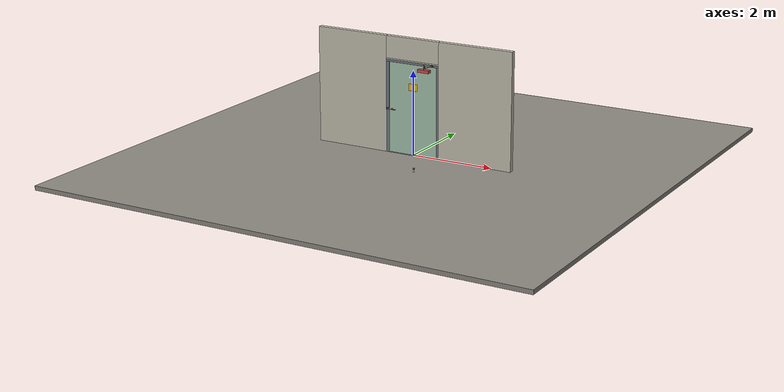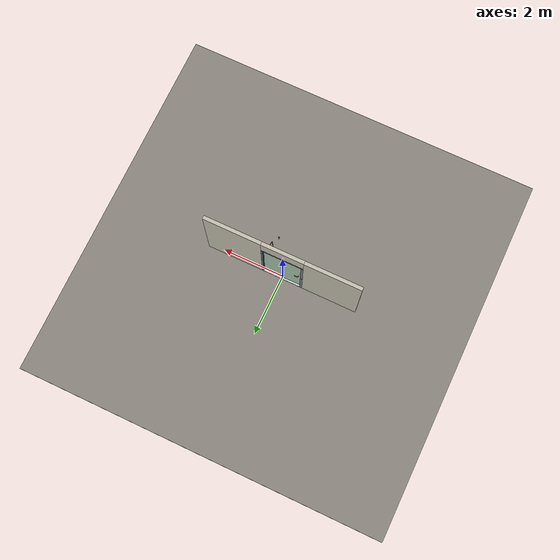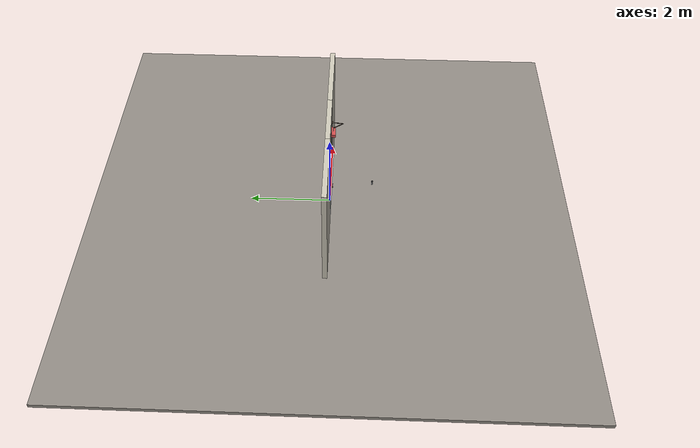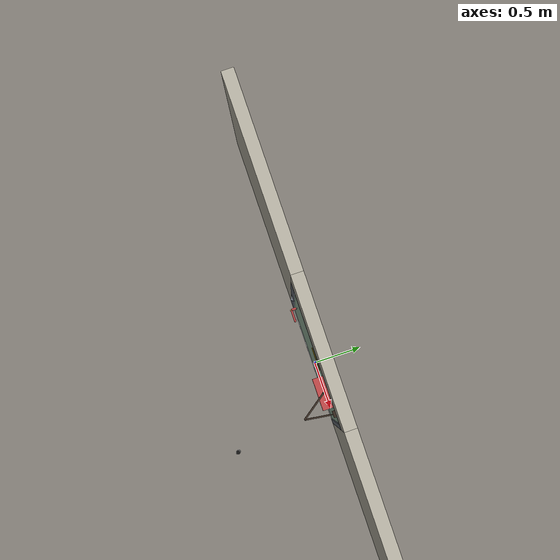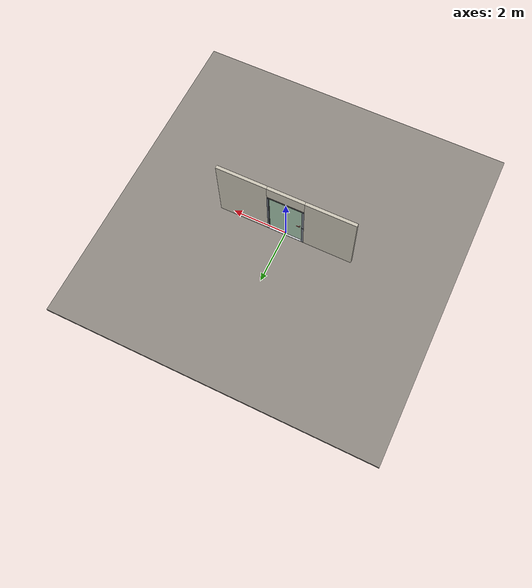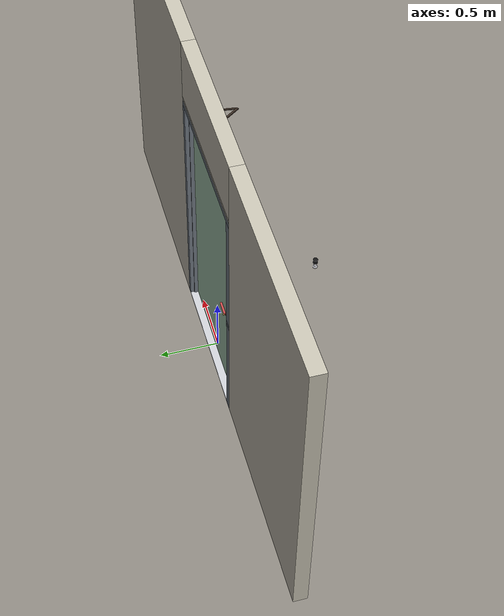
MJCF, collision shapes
<?xml version="1.0" ?>
<mujoco model="db0206_swing_single_full">
  <compiler angle="radian" meshdir="../../hardware" texturedir="../../textures" autolimits="true" inertiafromgeom="false"/>
  <option timestep="0.002" integrator="implicitfast" cone="elliptic" impratio="10" noslip_iterations="3">
    <flag multiccd="enable"/>
  </option>
  <size memory="16M"/>
  <default>
    <geom condim="4" solref="0.005 1" solimp="0.95 0.99 0.001"/>
    <joint solreflimit="0.005 1" solimplimit="0.95 0.99 0.001"/>
    <tendon solreflimit="0.005 1"/>
    <equality solref="0.002 1"/>
  </default>
  <visual>
    <headlight ambient="0.4 0.4 0.4" diffuse="0.7 0.7 0.7" specular="0.2 0.2 0.2"/>
    <quality shadowsize="4096"/>
    <map znear="0.01" zfar="60"/>
  </visual>
  <asset>
    <mesh name="closer_body_fdc4667657" file="closer_body_fdc4667657.obj"/>
    <mesh name="hinge_ed08f20e7f" file="hinge_ed08f20e7f.obj"/>
    <mesh name="hinge_jamb_1278ce3e25" file="hinge_jamb_1278ce3e25.obj"/>
    <mesh name="lever_9f02b544cf" file="lever_9f02b544cf.obj"/>
    <material name="mat_floor" rgba="0.55 0.53 0.5 1" specular="0.2" shininess="0.15" reflectance="0"/>
    <material name="mat_wall" rgba="0.78 0.76 0.7 1" specular="0.2" shininess="0.1" reflectance="0"/>
    <material name="mat_leaf" rgba="0.65 0.78 0.68 1" specular="0.2" shininess="0.52" reflectance="0"/>
    <material name="mat_hinge" rgba="0.65 0.66 0.68 1" specular="0.74" shininess="0.5" reflectance="0.36"/>
    <material name="mat_op_nickel_satin" rgba="0.72 0.7 0.66 1" specular="0.8" shininess="0.65" reflectance="0.4"/>
    <material name="mat_trim" rgba="0.85 0.66 0.3 1" specular="0.8" shininess="0.75" reflectance="0.4"/>
    <material name="mat_keyway" rgba="0.05 0.05 0.05 1" specular="0.2" shininess="0.5" reflectance="0"/>
    <material name="mat_bolt" rgba="0.85 0.66 0.3 1" specular="0.8" shininess="0.75" reflectance="0.4"/>
    <material name="mat_frame" rgba="0.45 0.48 0.52 1" specular="0.32" shininess="0.6" reflectance="0.08"/>
    <material name="mat_threshold" rgba="0.8 0.81 0.83 1" specular="0.8" shininess="0.6" reflectance="0.4"/>
    <material name="mat_closer" rgba="0.22 0.17 0.13 1" specular="0.8" shininess="0.6" reflectance="0.4"/>
    <material name="mat_placard" rgba="0.95 0.75 0.05 1" specular="0.2" shininess="0.5" reflectance="0"/>
    <material name="mat_bumper_stop" rgba="0.08 0.08 0.08 1" specular="0.2" shininess="0.1" reflectance="0"/>
    <material name="mat_stop_base" rgba="0.9 0.9 0.92 1" specular="0.8" shininess="0.9" reflectance="0.4"/>
    <texture name="skybox" type="skybox" builtin="gradient" rgb1="0.6 0.7 0.85" rgb2="0.9 0.92 0.95" width="256" height="256"/>
  </asset>
  <worldbody>
    <light name="sun" pos="1.5 -2.5 4" dir="-0.3 0.5 -0.8" directional="true" diffuse="0.8 0.8 0.8" specular="0.3 0.3 0.3" castshadow="true"/>
    <light name="fill" pos="-1.5 2.5 3" dir="0.3 -0.5 -0.7" directional="true" diffuse="0.35 0.35 0.4" castshadow="false"/>
    <camera name="robot_view" pos="0 -2.609312 1.812087" xyaxes="1 0 0 0 0.26963 0.962964" fovy="52"/>
    <camera name="far_view" pos="0 2.666313 1.812087" xyaxes="-1 0 0 0 -0.26963 0.962964" fovy="52"/>
    <camera name="iso" pos="-2.004737 -2.187262 2.234138" xyaxes="0.741536 -0.670913 0 0.242917 0.268487 0.932151" fovy="46"/>
    <camera name="detail_handle" pos="-0.259 -0.877 1.32" xyaxes="0.97561 0.219512 0 -0.070934 0.315262 0.94635" fovy="38"/>
    <geom name="floor" type="box" size="6 6 0.05" pos="0 0 -0.05" material="mat_floor" group="0" contype="1" conaffinity="1" friction="0.8 0.005 0.0001" density="2400"/>
    <geom name="wall_left" type="box" size="0.9035 0.0575 1.3735" pos="-1.5965 0.0285 1.3735" material="mat_wall" group="0" contype="1" conaffinity="1" friction="0.6 0.005 0.0001" density="800"/>
    <geom name="wall_right" type="box" size="0.9185 0.0575 1.3735" pos="1.5815 0.0285 1.3735" material="mat_wall" group="0" contype="1" conaffinity="1" friction="0.6 0.005 0.0001" density="800"/>
    <geom name="wall_header" type="box" size="0.678 0.0575 0.26" pos="-0.015 0.0285 2.487" material="mat_wall" group="0" contype="1" conaffinity="1" friction="0.6 0.005 0.0001" density="800"/>
    <geom name="hinge_0_jamb" type="mesh" mesh="hinge_jamb_1278ce3e25" pos="0.61 -0.029 0.267" quat="0 0 1 0" material="mat_hinge" group="1" contype="0" conaffinity="0" density="7850"/>
    <geom name="hinge_1_jamb" type="mesh" mesh="hinge_jamb_1278ce3e25" pos="0.61 -0.029 0.832333" quat="0 0 1 0" material="mat_hinge" group="1" contype="0" conaffinity="0" density="7850"/>
    <geom name="hinge_2_jamb" type="mesh" mesh="hinge_jamb_1278ce3e25" pos="0.61 -0.029 1.397667" quat="0 0 1 0" material="mat_hinge" group="1" contype="0" conaffinity="0" density="7850"/>
    <geom name="hinge_3_jamb" type="mesh" mesh="hinge_jamb_1278ce3e25" pos="0.61 -0.029 1.963" quat="0 0 1 0" material="mat_hinge" group="1" contype="0" conaffinity="0" density="7850"/>
    <geom name="jamb_hinge" type="box" size="0.025 0.0575 1.0735" pos="0.638 0.0285 1.0735" material="mat_frame" group="0" contype="1" conaffinity="1" friction="0.6 0.005 0.0001" density="300"/>
    <geom name="strike_1040_wall_n" type="box" size="0.04 0.03825 0.0183" pos="-0.653 0.04775 1.04" material="mat_frame" group="0" contype="1" conaffinity="1" friction="0.6 0.005 0.0001" density="300"/>
    <geom name="strike_1040_wall_p" type="box" size="0.04 0.008 0.0183" pos="-0.653 -0.0175 1.04" material="mat_frame" group="0" contype="1" conaffinity="1" friction="0.6 0.005 0.0001" density="300"/>
    <geom name="strike_1040_ramp" type="box" size="0.04 0.018028 0.0183" pos="-0.656282 -0.018312 1.04" quat="0.957092 0 0 -0.289784" material="mat_frame" group="0" contype="1" conaffinity="1" friction="0.12 0.005 0.0001" density="300"/>
    <geom name="strike_1040_back" type="box" size="0.0285 0.0095 0.0183" pos="-0.6645 0 1.04" material="mat_frame" group="0" contype="1" conaffinity="1" friction="0.6 0.005 0.0001" density="300"/>
    <geom name="jamb_strike_0" type="box" size="0.04 0.0575 0.51085" pos="-0.653 0.0285 0.51085" material="mat_frame" group="0" contype="1" conaffinity="1" friction="0.6 0.005 0.0001" density="300"/>
    <geom name="jamb_strike_1" type="box" size="0.04 0.0575 0.54435" pos="-0.653 0.0285 1.60265" material="mat_frame" group="0" contype="1" conaffinity="1" friction="0.6 0.005 0.0001" density="300"/>
    <geom name="jamb_head" type="box" size="0.678 0.0575 0.025" pos="-0.015 0.0285 2.172" material="mat_frame" group="0" contype="1" conaffinity="1" friction="0.6 0.005 0.0001" density="300"/>
    <geom name="head_stud" type="box" size="0.678 0.0575 0.015" pos="-0.015 0.0285 2.212" material="mat_wall" group="0" contype="1" conaffinity="1" friction="0.6 0.005 0.0001" density="500"/>
    <geom name="stop_hinge" type="box" size="0.0055 0.016 1.0735" pos="0.6075 0.0385 1.0735" material="mat_frame" group="0" contype="1" conaffinity="1" friction="0.6 0.005 0.0001" density="300"/>
    <geom name="stop_strike" type="box" size="0.0055 0.016 1.0735" pos="-0.6075 0.0385 1.0735" material="mat_frame" group="0" contype="1" conaffinity="1" friction="0.6 0.005 0.0001" density="300"/>
    <geom name="stop_head" type="box" size="0.613 0.016 0.0055" pos="0 0.0385 2.1415" material="mat_frame" group="0" contype="1" conaffinity="1" friction="0.6 0.005 0.0001" density="300"/>
    <geom name="threshold" type="box" size="0.663 0.0575 0.0065" pos="0 0.0285 0.0065" material="mat_threshold" group="0" contype="1" conaffinity="1" friction="0.5 0.005 0.0001" density="2700"/>
    <geom name="closer_bracket" type="box" size="0.03 0.012 0.014" pos="0.513 -0.041 2.177" material="mat_closer" group="1" contype="0" conaffinity="0" density="2700"/>
    <geom name="door_stop_base" type="cylinder" size="0.022 0.003" pos="0.626 -1.06515 0.003" material="mat_stop_base" group="0" contype="1" conaffinity="1" friction="0.6 0.005 0.0001" density="7850"/>
    <geom name="door_stop_post" type="cylinder" size="0.012 0.0255" pos="0.626 -1.06515 0.0315" material="mat_stop_base" group="0" contype="1" conaffinity="1" friction="0.6 0.005 0.0001" density="7850"/>
    <geom name="door_stop_bumper" type="cylinder" size="0.022 0.02" pos="0.626 -1.06515 0.077" material="mat_bumper_stop" group="0" contype="1" conaffinity="1" friction="0.6 0.005 0.0001" density="1100"/>
    <site name="approach_point" pos="0 -1.5 0" quat="1 0 0 0" size="0.05" rgba="0.2 0.9 0.2 0.5" group="4"/>
    <site name="goal_point" pos="0 1.5 0" quat="1 0 0 0" size="0.05" rgba="0.2 0.9 0.2 0.5" group="4"/>
    <site name="door_plane_center" pos="0 0 1.0735" quat="1 0 0 0" size="0.02" rgba="0.2 0.9 0.2 0.5" group="4"/>
    <body name="leaf" pos="0.613 0 0">
      <inertial pos="-0.573399 -0.007918 1.184265" mass="126.666749" quat="0.468809 0.483492 0.523031 -0.52239" diaginertia="15.259449637 54.354596862 69.461880445"/>
      <joint name="leaf_hinge" type="hinge" axis="0 0 1" pos="-0.003 -0.029 0" limited="true" range="0 1.570796" damping="12.850995" frictionloss="0.846963" stiffness="54.310033" springref="-1.794144" armature="0.02"/>
      <geom name="leaf_slab" type="box" size="0.6095 0.022 1.063" pos="-0.6125 0 1.08" material="mat_leaf" group="0" contype="1" conaffinity="1" friction="0.4 0.005 0.0001" density="1"/>
      <geom name="hinge_0" type="mesh" mesh="hinge_ed08f20e7f" pos="-0.003 -0.029 0.267" quat="0 0 1 0" material="mat_hinge" group="1" contype="0" conaffinity="0" density="7850"/>
      <geom name="hinge_1" type="mesh" mesh="hinge_ed08f20e7f" pos="-0.003 -0.029 0.832333" quat="0 0 1 0" material="mat_hinge" group="1" contype="0" conaffinity="0" density="7850"/>
      <geom name="hinge_2" type="mesh" mesh="hinge_ed08f20e7f" pos="-0.003 -0.029 1.397667" quat="0 0 1 0" material="mat_hinge" group="1" contype="0" conaffinity="0" density="7850"/>
      <geom name="hinge_3" type="mesh" mesh="hinge_ed08f20e7f" pos="-0.003 -0.029 1.963" quat="0 0 1 0" material="mat_hinge" group="1" contype="0" conaffinity="0" density="7850"/>
      <geom name="leaf_latch_bolt_faceplate" type="box" size="0.0006 0.014 0.0283" pos="-1.2214 0 1.04" material="mat_bolt" group="1" contype="0" conaffinity="0" density="8500"/>
      <geom name="closer_body" type="mesh" mesh="closer_body_fdc4667657" pos="-0.3 -0.022 2.046" quat="0 0 -0.707107 0.707107" material="mat_closer" group="1" contype="0" conaffinity="0" density="2000"/>
      <geom name="closer_body_col" type="box" size="0.145 0.05 0.035" pos="-0.3 -0.072 2.046" material="mat_closer" group="3" contype="1" conaffinity="1" rgba="0.8 0.3 0.3 0.25" friction="0.6 0.005 0.0001" density="2000"/>
      <geom name="closer_pinion_shaft" type="cylinder" size="0.008 0.0655" pos="-0.3 -0.072 2.1115" material="mat_closer" group="1" contype="0" conaffinity="0" density="2700"/>
      <geom name="warning_placard" type="box" size="0.11 0.001 0.08" pos="-0.6125 -0.023 1.6115" material="mat_placard" group="2" contype="0" conaffinity="0" density="1000"/>
      <site name="leaf_edge_mid" pos="-1.222 0 1.063" quat="1 0 0 0" size="0.02" rgba="0.2 0.9 0.2 0.5" group="4"/>
      <body name="leaf_handle" pos="-1.152 0 1.04">
        <inertial pos="0.027758 -0.000956 0" mass="1.005882" quat="0.702403 0 0 -0.71178" diaginertia="0.001794484 0.003806886 0.005422316"/>
        <joint name="leaf_handle_hinge" type="hinge" axis="0 1 0" limited="true" range="0 0.96" damping="0.245633" frictionloss="0.048" stiffness="1.2" springref="-0.458333" armature="0.01"/>
        <geom name="leaf_handle_spindle" type="cylinder" size="0.006 0.03" pos="0 0 0" quat="0.707107 -0.707107 0 0" material="mat_op_nickel_satin" group="1" contype="0" conaffinity="0" density="7850"/>
        <geom name="leaf_handle_lever_n" type="mesh" mesh="lever_9f02b544cf" pos="0 -0.022 0" quat="0 0 -0.707107 0.707107" material="mat_op_nickel_satin" group="1" contype="0" conaffinity="0" density="3000"/>
        <geom name="leaf_handle_lever_col_n" type="capsule" size="0.0095 0.053" pos="0.0625 -0.077 0" quat="0.707107 0 0.707107 0" material="mat_op_nickel_satin" group="3" contype="1" conaffinity="1" rgba="0.8 0.3 0.3 0.25" friction="0.7 0.01 0.0001" density="3000"/>
        <geom name="leaf_handle_hub_col_n" type="cylinder" size="0.012 0.022" pos="0 -0.052 0" quat="0.707107 -0.707107 0 0" material="mat_op_nickel_satin" group="3" contype="1" conaffinity="1" rgba="0.8 0.3 0.3 0.25" friction="0.6 0.005 0.0001" density="3000"/>
        <geom name="leaf_handle_cylinder_n" type="cylinder" size="0.0085 0.006" pos="0 -0.0845 0" quat="0.707107 -0.707107 0 0" material="mat_trim" group="1" contype="0" conaffinity="0" density="7100"/>
        <geom name="leaf_handle_keyway_n" type="box" size="0.0012 0.0008 0.006" pos="0 -0.091 0" material="mat_keyway" group="1" contype="0" conaffinity="0" density="7100"/>
        <geom name="leaf_handle_lever_p" type="mesh" mesh="lever_9f02b544cf" pos="0 0.022 0" quat="0 0 0.707107 0.707107" material="mat_op_nickel_satin" group="1" contype="0" conaffinity="0" density="3000"/>
        <geom name="leaf_handle_lever_col_p" type="capsule" size="0.0095 0.053" pos="0.0625 0.077 0" quat="0.707107 0 0.707107 0" material="mat_op_nickel_satin" group="3" contype="1" conaffinity="1" rgba="0.8 0.3 0.3 0.25" friction="0.7 0.01 0.0001" density="3000"/>
        <geom name="leaf_handle_hub_col_p" type="cylinder" size="0.012 0.022" pos="0 0.052 0" quat="0.707107 -0.707107 0 0" material="mat_op_nickel_satin" group="3" contype="1" conaffinity="1" rgba="0.8 0.3 0.3 0.25" friction="0.6 0.005 0.0001" density="3000"/>
        <geom name="leaf_handle_turn_button_p" type="cylinder" size="0.006 0.005" pos="0 0.0875 0" quat="0.707107 -0.707107 0 0" material="mat_trim" group="1" contype="0" conaffinity="0" density="7100"/>
        <site name="leaf_handle_grip_n" pos="0.1 -0.077 0" quat="1 0 0 0" size="0.012" rgba="0.2 0.9 0.2 0.5" group="4"/>
        <site name="leaf_handle_grip_p" pos="0.1 0.077 0" quat="1 0 0 0" size="0.012" rgba="0.2 0.9 0.2 0.5" group="4"/>
      </body>
      <body name="leaf_latch_bolt" pos="-1.222 0 1.04">
        <inertial pos="0.0055 0 0" mass="0.074627" quat="0.92388 0.382683 0 0" diaginertia="0.000002271 0.000013255 0.000013255"/>
        <joint name="leaf_latch_bolt_slide" type="slide" axis="1 0 0" limited="true" range="0 0.019" damping="2" frictionloss="0.3" stiffness="600" springref="-0.01" armature="0.1"/>
        <geom name="leaf_latch_bolt_capsule" type="capsule" size="0.008 0.0165" pos="0.0055 0 0" quat="0.707107 0 -0.707107 0" material="mat_bolt" group="0" contype="1" conaffinity="1" friction="0.2 0.005 0.0001" density="8500"/>
      </body>
      <body name="closer_arm_main" pos="-0.3 -0.072 2.177" quat="0.890947 0 0 -0.454107">
        <inertial pos="0.14 0 0" mass="0.12096" quat="1 0 0 0" diaginertia="0.000003588 0.00079128 0.000792852"/>
        <joint name="closer_pinion" type="hinge" axis="0 0 1" limited="false" damping="0.01" armature="0.002"/>
        <geom name="closer_arm_main_geom" type="box" size="0.14 0.008 0.005" pos="0.14 0 0" material="mat_closer" group="1" contype="0" conaffinity="0" density="2700"/>
        <body name="closer_arm_fore" pos="0.28 0 0" quat="0.373215 0 0 0.927745">
          <inertial pos="0.128088 0 0" mass="0.076531" quat="1 0 0 0" diaginertia="0.000001771 0.000437665 0.000438201"/>
          <joint name="closer_elbow" type="hinge" axis="0 0 1" limited="false" damping="0.01" armature="0.002"/>
          <geom name="closer_arm_fore_geom" type="box" size="0.1125 0.007 0.004" pos="0.1125 0 0" material="mat_closer" group="1" contype="0" conaffinity="0" density="2700"/>
          <geom name="closer_fore_neck" type="box" size="0.0175 0.003 0.003" pos="0.2425 0 0" material="mat_closer" group="1" contype="0" conaffinity="0" density="2700"/>
          <geom name="closer_fore_pivot" type="cylinder" size="0.005 0.012" pos="0.26 0 0" material="mat_closer" group="1" contype="0" conaffinity="0" density="2700"/>
        </body>
      </body>
    </body>
  </worldbody>
  <tendon>
    <fixed name="leaf_latch_bolt_coupling" limited="true" range="0 10">
      <joint joint="leaf_latch_bolt_slide" coef="1"/>
      <joint joint="leaf_handle_hinge" coef="-0.020879"/>
    </fixed>
  </tendon>
  <equality>
    <connect name="closer_arm_connect" body1="closer_arm_fore" body2="world" anchor="0.26 0 0" active="true"/>
  </equality>
  <contact>
    <exclude body1="closer_arm_main" body2="leaf"/>
    <exclude body1="closer_arm_fore" body2="leaf"/>
    <exclude body1="closer_arm_main" body2="closer_arm_fore"/>
  </contact>
  <sensor>
    <jointpos name="leaf_hinge_pos" joint="leaf_hinge"/>
    <jointvel name="leaf_hinge_vel" joint="leaf_hinge"/>
    <jointpos name="leaf_handle_hinge_pos" joint="leaf_handle_hinge"/>
    <jointvel name="leaf_handle_hinge_vel" joint="leaf_handle_hinge"/>
    <jointpos name="leaf_latch_bolt_slide_pos" joint="leaf_latch_bolt_slide"/>
    <jointvel name="leaf_latch_bolt_slide_vel" joint="leaf_latch_bolt_slide"/>
  </sensor>
</mujoco>
